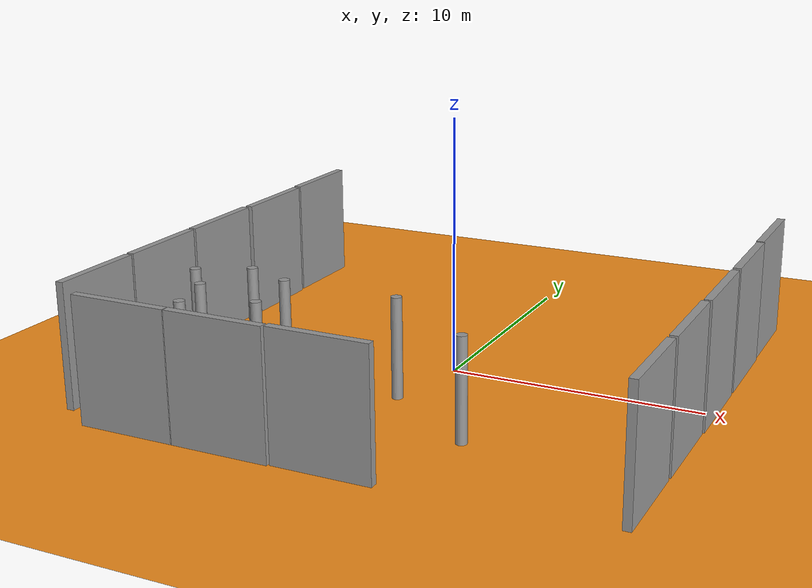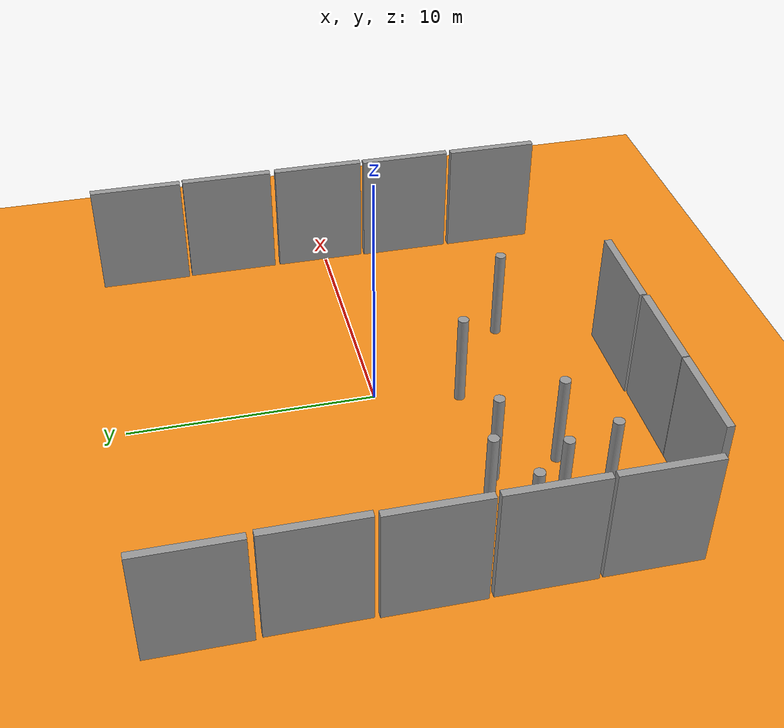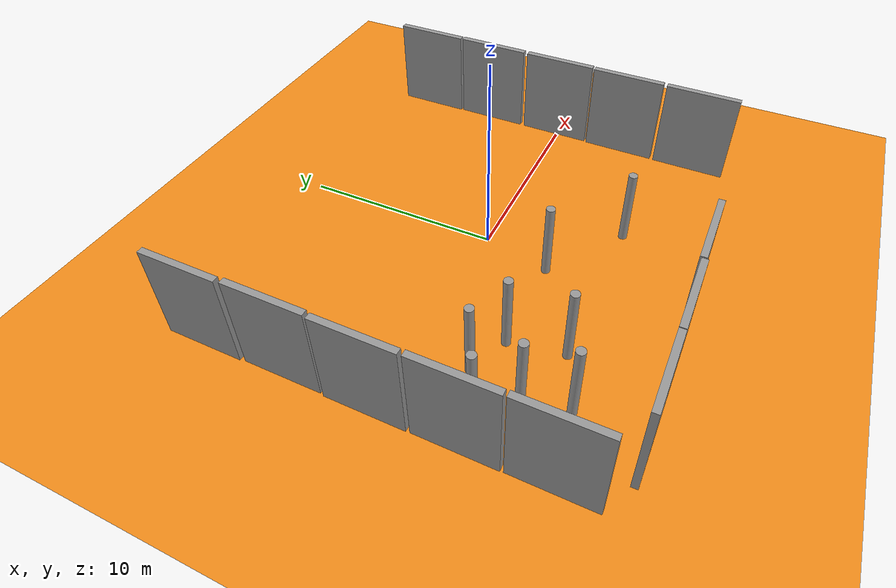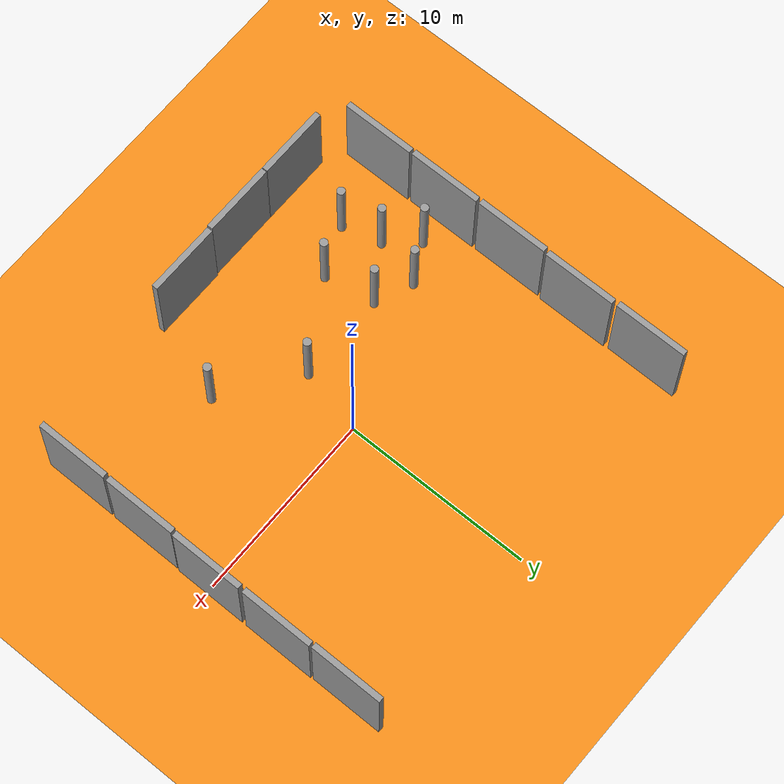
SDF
<sdf version="1.7">
 <world name="default">
  <model name="ground_plane">
   <static>1</static>
   <link name="link">
    <collision name="collision">
     <geometry><plane><normal>0 0 1</normal><size>100 100</size></plane></geometry>
     <surface>
      <contact><collide_bitmask>65535</collide_bitmask></contact>
      <friction><ode><mu>100</mu><mu2>50</mu2></ode></friction>
     </surface>
    </collision>
    <visual name="visual">
     <cast_shadows>0</cast_shadows>
     <geometry><plane><normal>0 0 1</normal><size>100 100</size></plane></geometry>
     <material>
      <script><uri>file://media/materials/scripts/gazebo.material</uri><name>Gazebo/Orange</name></script>
     </material>
    </visual>
   </link>
  </model>
  <model name="unit_cylinder_clone_clone_clone_clone_1">
   <pose>-7.51036 -2.53355 1.97903 -0 -0 -1.69984</pose>
   <link name="link">
    <inertial>
     <mass>1</mass>
     <inertia><ixx>0.145833</ixx><ixy>0</ixy><ixz>0</ixz><iyy>0.145833</iyy><iyz>0</iyz><izz>0.125</izz></inertia>
    </inertial>
    <collision name="collision">
     <geometry><cylinder><radius>0.213223</radius><length>3.95805</length></cylinder></geometry>
    </collision>
    <visual name="visual">
     <geometry><cylinder><radius>0.213223</radius><length>3.95805</length></cylinder></geometry>
     <material>
      <script><name>Gazebo/Grey</name><uri>file://media/materials/scripts/gazebo.material</uri></script>
     </material>
    </visual>
   </link>
  </model>
  <model name="unit_cylinder_clone_clone_clone_clone_5">
   <pose>-9.47016 -3.55077 1.97903 -0 -0 -1.70047</pose>
   <link name="link">
    <inertial>
     <mass>1</mass>
     <inertia><ixx>0.145833</ixx><ixy>0</ixy><ixz>0</ixz><iyy>0.145833</iyy><iyz>0</iyz><izz>0.125</izz></inertia>
    </inertial>
    <collision name="collision">
     <geometry><cylinder><radius>0.213223</radius><length>3.95805</length></cylinder></geometry>
    </collision>
    <visual name="visual">
     <geometry><cylinder><radius>0.213223</radius><length>3.95805</length></cylinder></geometry>
     <material>
      <script><name>Gazebo/Grey</name><uri>file://media/materials/scripts/gazebo.material</uri></script>
     </material>
    </visual>
   </link>
  </model>
  <model name="unit_cylinder_clone_clone_clone_clone_3_clone_0">
   <pose>-5.09151 -6.00811 1.97903 0 0 -1.71708</pose>
   <link name="link">
    <inertial>
     <mass>1</mass>
     <inertia><ixx>0.145833</ixx><ixy>0</ixy><ixz>0</ixz><iyy>0.145833</iyy><iyz>0</iyz><izz>0.125</izz></inertia>
    </inertial>
    <collision name="collision">
     <geometry><cylinder><radius>0.213223</radius><length>3.95805</length></cylinder></geometry>
    </collision>
    <visual name="visual">
     <geometry><cylinder><radius>0.213223</radius><length>3.95805</length></cylinder></geometry>
     <material>
      <script><name>Gazebo/Grey</name><uri>file://media/materials/scripts/gazebo.material</uri></script>
     </material>
    </visual>
   </link>
  </model>
  <model name="unit_cylinder_clone_clone_clone_clone_3_clone_1">
   <pose>3.08706 -6.06731 1.97901 0 0 -1.71274</pose>
   <link name="link">
    <inertial>
     <mass>1</mass>
     <inertia><ixx>0.145833</ixx><ixy>0</ixy><ixz>0</ixz><iyy>0.145833</iyy><iyz>0</iyz><izz>0.125</izz></inertia>
    </inertial>
    <collision name="collision">
     <geometry><cylinder><radius>0.213223</radius><length>3.95805</length></cylinder></geometry>
    </collision>
    <visual name="visual">
     <geometry><cylinder><radius>0.213223</radius><length>3.95805</length></cylinder></geometry>
     <material>
      <script><name>Gazebo/Grey</name><uri>file://media/materials/scripts/gazebo.material</uri></script>
     </material>
    </visual>
   </link>
  </model>
  <model name="unit_cylinder_clone_clone_clone_clone_3_clone_4">
   <pose>-7.63846 -7.10085 1.97901 -0 -0 -1.70854</pose>
   <link name="link">
    <inertial>
     <mass>1</mass>
     <inertia><ixx>0.145833</ixx><ixy>0</ixy><ixz>0</ixz><iyy>0.145833</iyy><iyz>0</iyz><izz>0.125</izz></inertia>
    </inertial>
    <collision name="collision">
     <geometry><cylinder><radius>0.213223</radius><length>3.95805</length></cylinder></geometry>
    </collision>
    <visual name="visual">
     <geometry><cylinder><radius>0.213223</radius><length>3.95805</length></cylinder></geometry>
     <material>
      <script><name>Gazebo/Grey</name><uri>file://media/materials/scripts/gazebo.material</uri></script>
     </material>
    </visual>
   </link>
  </model>
  <model name="unit_cylinder_clone_clone_clone_clone_3_clone_7">
   <pose>-5.55137 -3.34719 1.97901 -0 -0 -1.71443</pose>
   <link name="link">
    <inertial>
     <mass>1</mass>
     <inertia><ixx>0.145833</ixx><ixy>0</ixy><ixz>0</ixz><iyy>0.145833</iyy><iyz>0</iyz><izz>0.125</izz></inertia>
    </inertial>
    <collision name="collision">
     <geometry><cylinder><radius>0.213223</radius><length>3.95805</length></cylinder></geometry>
    </collision>
    <visual name="visual">
     <geometry><cylinder><radius>0.213223</radius><length>3.95805</length></cylinder></geometry>
     <material>
      <script><name>Gazebo/Grey</name><uri>file://media/materials/scripts/gazebo.material</uri></script>
     </material>
    </visual>
   </link>
  </model>
  <model name="Wall1_clone_clone_0_clone_1">
   <link name="link_1">
    <inertial>
     <mass>5.76087</mass>
     <inertia><ixx>18.5128</ixx><ixy>0</ixy><ixz>0</ixz><iyy>11.4896</iyy><iyz>0</iyz><izz>7.11389</izz></inertia>
    </inertial>
    <pose>-0.387698 -7.91676 -1e-06 0 -0 1.56704</pose>
    <visual name="visual">
     <geometry><box><size>0.30743 3.83717 4.88248</size></box></geometry>
     <material>
      <lighting>1</lighting>
      <script><uri>file://media/materials/scripts/gazebo.material</uri><name>Gazebo/Grey</name></script>
      <shader type="pixel"/>
     </material>
    </visual>
    <collision name="collision">
     <geometry><box><size>0.30743 3.83717 4.88248</size></box></geometry>
     <surface>
      <friction>
       <ode><mu>1</mu><mu2>1</mu2><fdir1>0 0 0</fdir1><slip1>0</slip1><slip2>0</slip2></ode>
       <torsional>
        <coefficient>1</coefficient>
        <patch_radius>0</patch_radius>
        <surface_radius>0</surface_radius>
        <use_patch_radius>1</use_patch_radius>
        <ode><slip>0</slip></ode>
       </torsional>
      </friction>
      <bounce><restitution_coefficient>0</restitution_coefficient><threshold>1e+06</threshold></bounce>
      <contact>
       <collide_without_contact>0</collide_without_contact>
       <collide_without_contact_bitmask>1</collide_without_contact_bitmask>
       <collide_bitmask>1</collide_bitmask>
       <ode>
        <soft_cfm>0</soft_cfm>
        <soft_erp>0.2</soft_erp>
        <kp>1e+13</kp>
        <kd>1</kd>
        <max_vel>0.01</max_vel>
        <min_depth>0</min_depth>
       </ode>
       <bullet>
        <split_impulse>1</split_impulse>
        <split_impulse_penetration_threshold>-0.01</split_impulse_penetration_threshold>
        <soft_cfm>0</soft_cfm>
        <soft_erp>0.2</soft_erp>
        <kp>1e+13</kp>
        <kd>1</kd>
       </bullet>
      </contact>
     </surface>
    </collision>
   </link>
   <static>1</static>
   <pose>0.379357 -2.27494 2.43363 0 -0 0</pose>
  </model>
  <model name="Wall1_clone_clone_0_clone_2">
   <link name="link_1">
    <inertial>
     <mass>5.76087</mass>
     <inertia><ixx>18.5128</ixx><ixy>0</ixy><ixz>0</ixz><iyy>11.4896</iyy><iyz>0</iyz><izz>7.11389</izz></inertia>
    </inertial>
    <pose>-0.387698 -7.91676 -1e-06 0 -0 1.56704</pose>
    <visual name="visual">
     <geometry><box><size>0.30743 3.83717 4.88248</size></box></geometry>
     <material>
      <lighting>1</lighting>
      <script><uri>file://media/materials/scripts/gazebo.material</uri><name>Gazebo/Grey</name></script>
      <shader type="pixel"/>
     </material>
    </visual>
    <collision name="collision">
     <geometry><box><size>0.30743 3.83717 4.88248</size></box></geometry>
     <surface>
      <friction>
       <ode><mu>1</mu><mu2>1</mu2><fdir1>0 0 0</fdir1><slip1>0</slip1><slip2>0</slip2></ode>
       <torsional>
        <coefficient>1</coefficient>
        <patch_radius>0</patch_radius>
        <surface_radius>0</surface_radius>
        <use_patch_radius>1</use_patch_radius>
        <ode><slip>0</slip></ode>
       </torsional>
      </friction>
      <bounce><restitution_coefficient>0</restitution_coefficient><threshold>1e+06</threshold></bounce>
      <contact>
       <collide_without_contact>0</collide_without_contact>
       <collide_without_contact_bitmask>1</collide_without_contact_bitmask>
       <collide_bitmask>1</collide_bitmask>
       <ode>
        <soft_cfm>0</soft_cfm>
        <soft_erp>0.2</soft_erp>
        <kp>1e+13</kp>
        <kd>1</kd>
        <max_vel>0.01</max_vel>
        <min_depth>0</min_depth>
       </ode>
       <bullet>
        <split_impulse>1</split_impulse>
        <split_impulse_penetration_threshold>-0.01</split_impulse_penetration_threshold>
        <soft_cfm>0</soft_cfm>
        <soft_erp>0.2</soft_erp>
        <kp>1e+13</kp>
        <kd>1</kd>
       </bullet>
      </contact>
     </surface>
    </collision>
   </link>
   <static>1</static>
   <pose>-3.52558 -2.33274 2.43363 0 -0 0</pose>
  </model>
  <model name="Wall1_clone_clone_0_clone_3">
   <link name="link_1">
    <inertial>
     <mass>5.76087</mass>
     <inertia><ixx>18.5128</ixx><ixy>0</ixy><ixz>0</ixz><iyy>11.4896</iyy><iyz>0</iyz><izz>7.11389</izz></inertia>
    </inertial>
    <pose>-0.387698 -7.91676 -1e-06 0 -0 1.56704</pose>
    <visual name="visual">
     <geometry><box><size>0.30743 3.83717 4.88248</size></box></geometry>
     <material>
      <lighting>1</lighting>
      <script><uri>file://media/materials/scripts/gazebo.material</uri><name>Gazebo/Grey</name></script>
      <shader type="pixel"/>
     </material>
    </visual>
    <collision name="collision">
     <geometry><box><size>0.30743 3.83717 4.88248</size></box></geometry>
     <surface>
      <friction>
       <ode><mu>1</mu><mu2>1</mu2><fdir1>0 0 0</fdir1><slip1>0</slip1><slip2>0</slip2></ode>
       <torsional>
        <coefficient>1</coefficient>
        <patch_radius>0</patch_radius>
        <surface_radius>0</surface_radius>
        <use_patch_radius>1</use_patch_radius>
        <ode><slip>0</slip></ode>
       </torsional>
      </friction>
      <bounce><restitution_coefficient>0</restitution_coefficient><threshold>1e+06</threshold></bounce>
      <contact>
       <collide_without_contact>0</collide_without_contact>
       <collide_without_contact_bitmask>1</collide_without_contact_bitmask>
       <collide_bitmask>1</collide_bitmask>
       <ode>
        <soft_cfm>0</soft_cfm>
        <soft_erp>0.2</soft_erp>
        <kp>1e+13</kp>
        <kd>1</kd>
        <max_vel>0.01</max_vel>
        <min_depth>0</min_depth>
       </ode>
       <bullet>
        <split_impulse>1</split_impulse>
        <split_impulse_penetration_threshold>-0.01</split_impulse_penetration_threshold>
        <soft_cfm>0</soft_cfm>
        <soft_erp>0.2</soft_erp>
        <kp>1e+13</kp>
        <kd>1</kd>
       </bullet>
      </contact>
     </surface>
    </collision>
   </link>
   <static>1</static>
   <pose>-7.40027 -2.31744 2.43363 0 -0 0</pose>
  </model>
  <model name="Wall2">
   <link name="link_1">
    <inertial>
     <mass>5.76087</mass>
     <inertia><ixx>18.5128</ixx><ixy>0</ixy><ixz>0</ixz><iyy>11.4896</iyy><iyz>0</iyz><izz>7.11389</izz></inertia>
    </inertial>
    <pose>-1.7674 21.3112 2.43363 0 -0 3.13835</pose>
    <visual name="visual">
     <geometry><box><size>0.30743 3.83717 4.88248</size></box></geometry>
     <material>
      <lighting>1</lighting>
      <script><uri>file://media/materials/scripts/gazebo.material</uri><name>Gazebo/Grey</name></script>
      <shader type="pixel"/>
     </material>
    </visual>
    <collision name="collision">
     <geometry><box><size>0.30743 3.83717 4.88248</size></box></geometry>
     <surface>
      <friction>
       <ode><mu>1</mu><mu2>1</mu2><fdir1>0 0 0</fdir1><slip1>0</slip1><slip2>0</slip2></ode>
       <torsional>
        <coefficient>1</coefficient>
        <patch_radius>0</patch_radius>
        <surface_radius>0</surface_radius>
        <use_patch_radius>1</use_patch_radius>
        <ode><slip>0</slip></ode>
       </torsional>
      </friction>
      <bounce><restitution_coefficient>0</restitution_coefficient><threshold>1e+06</threshold></bounce>
      <contact>
       <collide_without_contact>0</collide_without_contact>
       <collide_without_contact_bitmask>1</collide_without_contact_bitmask>
       <collide_bitmask>1</collide_bitmask>
       <ode>
        <soft_cfm>0</soft_cfm>
        <soft_erp>0.2</soft_erp>
        <kp>1e+13</kp>
        <kd>1</kd>
        <max_vel>0.01</max_vel>
        <min_depth>0</min_depth>
       </ode>
       <bullet>
        <split_impulse>1</split_impulse>
        <split_impulse_penetration_threshold>-0.01</split_impulse_penetration_threshold>
        <soft_cfm>0</soft_cfm>
        <soft_erp>0.2</soft_erp>
        <kp>1e+13</kp>
        <kd>1</kd>
       </bullet>
      </contact>
     </surface>
    </collision>
   </link>
   <static>1</static>
   <pose>12.0447 -17.0153 -0 0 -0 0</pose>
  </model>
  <model name="Wall2_clone">
   <link name="link_1">
    <inertial>
     <mass>5.76087</mass>
     <inertia><ixx>18.5128</ixx><ixy>0</ixy><ixz>0</ixz><iyy>11.4896</iyy><iyz>0</iyz><izz>7.11389</izz></inertia>
    </inertial>
    <pose>-1.7674 21.3112 2.43363 0 -0 3.13835</pose>
    <visual name="visual">
     <geometry><box><size>0.30743 3.83717 4.88248</size></box></geometry>
     <material>
      <lighting>1</lighting>
      <script><uri>file://media/materials/scripts/gazebo.material</uri><name>Gazebo/Grey</name></script>
      <shader type="pixel"/>
     </material>
    </visual>
    <collision name="collision">
     <geometry><box><size>0.30743 3.83717 4.88248</size></box></geometry>
     <surface>
      <friction>
       <ode><mu>1</mu><mu2>1</mu2><fdir1>0 0 0</fdir1><slip1>0</slip1><slip2>0</slip2></ode>
       <torsional>
        <coefficient>1</coefficient>
        <patch_radius>0</patch_radius>
        <surface_radius>0</surface_radius>
        <use_patch_radius>1</use_patch_radius>
        <ode><slip>0</slip></ode>
       </torsional>
      </friction>
      <bounce><restitution_coefficient>0</restitution_coefficient><threshold>1e+06</threshold></bounce>
      <contact>
       <collide_without_contact>0</collide_without_contact>
       <collide_without_contact_bitmask>1</collide_without_contact_bitmask>
       <collide_bitmask>1</collide_bitmask>
       <ode>
        <soft_cfm>0</soft_cfm>
        <soft_erp>0.2</soft_erp>
        <kp>1e+13</kp>
        <kd>1</kd>
        <max_vel>0.01</max_vel>
        <min_depth>0</min_depth>
       </ode>
       <bullet>
        <split_impulse>1</split_impulse>
        <split_impulse_penetration_threshold>-0.01</split_impulse_penetration_threshold>
        <soft_cfm>0</soft_cfm>
        <soft_erp>0.2</soft_erp>
        <kp>1e+13</kp>
        <kd>1</kd>
       </bullet>
      </contact>
     </surface>
    </collision>
   </link>
   <static>1</static>
   <pose>12.019 -13.0627 -0 0 -0 0</pose>
  </model>
  <model name="Wall2_clone_0">
   <link name="link_1">
    <inertial>
     <mass>5.76087</mass>
     <inertia><ixx>18.5128</ixx><ixy>0</ixy><ixz>0</ixz><iyy>11.4896</iyy><iyz>0</iyz><izz>7.11389</izz></inertia>
    </inertial>
    <pose>-1.7674 21.3112 2.43363 0 -0 3.13835</pose>
    <visual name="visual">
     <geometry><box><size>0.30743 3.83717 4.88248</size></box></geometry>
     <material>
      <lighting>1</lighting>
      <script><uri>file://media/materials/scripts/gazebo.material</uri><name>Gazebo/Grey</name></script>
      <shader type="pixel"/>
     </material>
    </visual>
    <collision name="collision">
     <geometry><box><size>0.30743 3.83717 4.88248</size></box></geometry>
     <surface>
      <friction>
       <ode><mu>1</mu><mu2>1</mu2><fdir1>0 0 0</fdir1><slip1>0</slip1><slip2>0</slip2></ode>
       <torsional>
        <coefficient>1</coefficient>
        <patch_radius>0</patch_radius>
        <surface_radius>0</surface_radius>
        <use_patch_radius>1</use_patch_radius>
        <ode><slip>0</slip></ode>
       </torsional>
      </friction>
      <bounce><restitution_coefficient>0</restitution_coefficient><threshold>1e+06</threshold></bounce>
      <contact>
       <collide_without_contact>0</collide_without_contact>
       <collide_without_contact_bitmask>1</collide_without_contact_bitmask>
       <collide_bitmask>1</collide_bitmask>
       <ode>
        <soft_cfm>0</soft_cfm>
        <soft_erp>0.2</soft_erp>
        <kp>1e+13</kp>
        <kd>1</kd>
        <max_vel>0.01</max_vel>
        <min_depth>0</min_depth>
       </ode>
       <bullet>
        <split_impulse>1</split_impulse>
        <split_impulse_penetration_threshold>-0.01</split_impulse_penetration_threshold>
        <soft_cfm>0</soft_cfm>
        <soft_erp>0.2</soft_erp>
        <kp>1e+13</kp>
        <kd>1</kd>
       </bullet>
      </contact>
     </surface>
    </collision>
   </link>
   <static>1</static>
   <pose>12.0301 -21.0766 -0 0 -0 0</pose>
  </model>
  <model name="Wall2_clone_1">
   <link name="link_1">
    <inertial>
     <mass>5.76087</mass>
     <inertia><ixx>18.5128</ixx><ixy>0</ixy><ixz>0</ixz><iyy>11.4896</iyy><iyz>0</iyz><izz>7.11389</izz></inertia>
    </inertial>
    <pose>-1.7674 21.3112 2.43363 0 -0 3.13835</pose>
    <visual name="visual">
     <geometry><box><size>0.30743 3.83717 4.88248</size></box></geometry>
     <material>
      <lighting>1</lighting>
      <script><uri>file://media/materials/scripts/gazebo.material</uri><name>Gazebo/Grey</name></script>
      <shader type="pixel"/>
     </material>
    </visual>
    <collision name="collision">
     <geometry><box><size>0.30743 3.83717 4.88248</size></box></geometry>
     <surface>
      <friction>
       <ode><mu>1</mu><mu2>1</mu2><fdir1>0 0 0</fdir1><slip1>0</slip1><slip2>0</slip2></ode>
       <torsional>
        <coefficient>1</coefficient>
        <patch_radius>0</patch_radius>
        <surface_radius>0</surface_radius>
        <use_patch_radius>1</use_patch_radius>
        <ode><slip>0</slip></ode>
       </torsional>
      </friction>
      <bounce><restitution_coefficient>0</restitution_coefficient><threshold>1e+06</threshold></bounce>
      <contact>
       <collide_without_contact>0</collide_without_contact>
       <collide_without_contact_bitmask>1</collide_without_contact_bitmask>
       <collide_bitmask>1</collide_bitmask>
       <ode>
        <soft_cfm>0</soft_cfm>
        <soft_erp>0.2</soft_erp>
        <kp>1e+13</kp>
        <kd>1</kd>
        <max_vel>0.01</max_vel>
        <min_depth>0</min_depth>
       </ode>
       <bullet>
        <split_impulse>1</split_impulse>
        <split_impulse_penetration_threshold>-0.01</split_impulse_penetration_threshold>
        <soft_cfm>0</soft_cfm>
        <soft_erp>0.2</soft_erp>
        <kp>1e+13</kp>
        <kd>1</kd>
       </bullet>
      </contact>
     </surface>
    </collision>
   </link>
   <static>1</static>
   <pose>11.9663 -25.036 -0 0 -0 0</pose>
  </model>
  <model name="Wall2_clone_2">
   <link name="link_1">
    <inertial>
     <mass>5.76087</mass>
     <inertia><ixx>18.5128</ixx><ixy>0</ixy><ixz>0</ixz><iyy>11.4896</iyy><iyz>0</iyz><izz>7.11389</izz></inertia>
    </inertial>
    <pose>-1.7674 21.3112 2.43363 0 -0 3.13835</pose>
    <visual name="visual">
     <geometry><box><size>0.30743 3.83717 4.88248</size></box></geometry>
     <material>
      <lighting>1</lighting>
      <script><uri>file://media/materials/scripts/gazebo.material</uri><name>Gazebo/Grey</name></script>
      <shader type="pixel"/>
     </material>
    </visual>
    <collision name="collision">
     <geometry><box><size>0.30743 3.83717 4.88248</size></box></geometry>
     <surface>
      <friction>
       <ode><mu>1</mu><mu2>1</mu2><fdir1>0 0 0</fdir1><slip1>0</slip1><slip2>0</slip2></ode>
       <torsional>
        <coefficient>1</coefficient>
        <patch_radius>0</patch_radius>
        <surface_radius>0</surface_radius>
        <use_patch_radius>1</use_patch_radius>
        <ode><slip>0</slip></ode>
       </torsional>
      </friction>
      <bounce><restitution_coefficient>0</restitution_coefficient><threshold>1e+06</threshold></bounce>
      <contact>
       <collide_without_contact>0</collide_without_contact>
       <collide_without_contact_bitmask>1</collide_without_contact_bitmask>
       <collide_bitmask>1</collide_bitmask>
       <ode>
        <soft_cfm>0</soft_cfm>
        <soft_erp>0.2</soft_erp>
        <kp>1e+13</kp>
        <kd>1</kd>
        <max_vel>0.01</max_vel>
        <min_depth>0</min_depth>
       </ode>
       <bullet>
        <split_impulse>1</split_impulse>
        <split_impulse_penetration_threshold>-0.01</split_impulse_penetration_threshold>
        <soft_cfm>0</soft_cfm>
        <soft_erp>0.2</soft_erp>
        <kp>1e+13</kp>
        <kd>1</kd>
       </bullet>
      </contact>
     </surface>
    </collision>
   </link>
   <static>1</static>
   <pose>11.9339 -29.0595 -0 0 -0 0</pose>
  </model>
  <model name="Wall2_clone_3">
   <link name="link_1">
    <inertial>
     <mass>5.76087</mass>
     <inertia><ixx>18.5128</ixx><ixy>0</ixy><ixz>0</ixz><iyy>11.4896</iyy><iyz>0</iyz><izz>7.11389</izz></inertia>
    </inertial>
    <pose>-1.7674 21.3112 2.43363 0 -0 3.13835</pose>
    <visual name="visual">
     <geometry><box><size>0.30743 3.83717 4.88248</size></box></geometry>
     <material>
      <lighting>1</lighting>
      <script><uri>file://media/materials/scripts/gazebo.material</uri><name>Gazebo/Grey</name></script>
      <shader type="pixel"/>
     </material>
    </visual>
    <collision name="collision">
     <geometry><box><size>0.30743 3.83717 4.88248</size></box></geometry>
     <surface>
      <friction>
       <ode><mu>1</mu><mu2>1</mu2><fdir1>0 0 0</fdir1><slip1>0</slip1><slip2>0</slip2></ode>
       <torsional>
        <coefficient>1</coefficient>
        <patch_radius>0</patch_radius>
        <surface_radius>0</surface_radius>
        <use_patch_radius>1</use_patch_radius>
        <ode><slip>0</slip></ode>
       </torsional>
      </friction>
      <bounce><restitution_coefficient>0</restitution_coefficient><threshold>1e+06</threshold></bounce>
      <contact>
       <collide_without_contact>0</collide_without_contact>
       <collide_without_contact_bitmask>1</collide_without_contact_bitmask>
       <collide_bitmask>1</collide_bitmask>
       <ode>
        <soft_cfm>0</soft_cfm>
        <soft_erp>0.2</soft_erp>
        <kp>1e+13</kp>
        <kd>1</kd>
        <max_vel>0.01</max_vel>
        <min_depth>0</min_depth>
       </ode>
       <bullet>
        <split_impulse>1</split_impulse>
        <split_impulse_penetration_threshold>-0.01</split_impulse_penetration_threshold>
        <soft_cfm>0</soft_cfm>
        <soft_erp>0.2</soft_erp>
        <kp>1e+13</kp>
        <kd>1</kd>
       </bullet>
      </contact>
     </surface>
    </collision>
   </link>
   <static>1</static>
   <pose>-9.2279 -12.8106 -0 0 -0 0</pose>
  </model>
  <model name="Wall2_clone_4">
   <link name="link_1">
    <inertial>
     <mass>5.76087</mass>
     <inertia><ixx>18.5128</ixx><ixy>0</ixy><ixz>0</ixz><iyy>11.4896</iyy><iyz>0</iyz><izz>7.11389</izz></inertia>
    </inertial>
    <pose>-1.7674 21.3112 2.43363 0 -0 3.13835</pose>
    <visual name="visual">
     <geometry><box><size>0.30743 3.83717 4.88248</size></box></geometry>
     <material>
      <lighting>1</lighting>
      <script><uri>file://media/materials/scripts/gazebo.material</uri><name>Gazebo/Grey</name></script>
      <shader type="pixel"/>
     </material>
    </visual>
    <collision name="collision">
     <geometry><box><size>0.30743 3.83717 4.88248</size></box></geometry>
     <surface>
      <friction>
       <ode><mu>1</mu><mu2>1</mu2><fdir1>0 0 0</fdir1><slip1>0</slip1><slip2>0</slip2></ode>
       <torsional>
        <coefficient>1</coefficient>
        <patch_radius>0</patch_radius>
        <surface_radius>0</surface_radius>
        <use_patch_radius>1</use_patch_radius>
        <ode><slip>0</slip></ode>
       </torsional>
      </friction>
      <bounce><restitution_coefficient>0</restitution_coefficient><threshold>1e+06</threshold></bounce>
      <contact>
       <collide_without_contact>0</collide_without_contact>
       <collide_without_contact_bitmask>1</collide_without_contact_bitmask>
       <collide_bitmask>1</collide_bitmask>
       <ode>
        <soft_cfm>0</soft_cfm>
        <soft_erp>0.2</soft_erp>
        <kp>1e+13</kp>
        <kd>1</kd>
        <max_vel>0.01</max_vel>
        <min_depth>0</min_depth>
       </ode>
       <bullet>
        <split_impulse>1</split_impulse>
        <split_impulse_penetration_threshold>-0.01</split_impulse_penetration_threshold>
        <soft_cfm>0</soft_cfm>
        <soft_erp>0.2</soft_erp>
        <kp>1e+13</kp>
        <kd>1</kd>
       </bullet>
      </contact>
     </surface>
    </collision>
   </link>
   <static>1</static>
   <pose>-9.1794 -16.8753 -0 0 -0 0</pose>
  </model>
  <model name="Wall2_clone_5">
   <link name="link_1">
    <inertial>
     <mass>5.76087</mass>
     <inertia><ixx>18.5128</ixx><ixy>0</ixy><ixz>0</ixz><iyy>11.4896</iyy><iyz>0</iyz><izz>7.11389</izz></inertia>
    </inertial>
    <pose>-1.7674 21.3112 2.43363 0 -0 3.13835</pose>
    <visual name="visual">
     <geometry><box><size>0.30743 3.83717 4.88248</size></box></geometry>
     <material>
      <lighting>1</lighting>
      <script><uri>file://media/materials/scripts/gazebo.material</uri><name>Gazebo/Grey</name></script>
      <shader type="pixel"/>
     </material>
    </visual>
    <collision name="collision">
     <geometry><box><size>0.30743 3.83717 4.88248</size></box></geometry>
     <surface>
      <friction>
       <ode><mu>1</mu><mu2>1</mu2><fdir1>0 0 0</fdir1><slip1>0</slip1><slip2>0</slip2></ode>
       <torsional>
        <coefficient>1</coefficient>
        <patch_radius>0</patch_radius>
        <surface_radius>0</surface_radius>
        <use_patch_radius>1</use_patch_radius>
        <ode><slip>0</slip></ode>
       </torsional>
      </friction>
      <bounce><restitution_coefficient>0</restitution_coefficient><threshold>1e+06</threshold></bounce>
      <contact>
       <collide_without_contact>0</collide_without_contact>
       <collide_without_contact_bitmask>1</collide_without_contact_bitmask>
       <collide_bitmask>1</collide_bitmask>
       <ode>
        <soft_cfm>0</soft_cfm>
        <soft_erp>0.2</soft_erp>
        <kp>1e+13</kp>
        <kd>1</kd>
        <max_vel>0.01</max_vel>
        <min_depth>0</min_depth>
       </ode>
       <bullet>
        <split_impulse>1</split_impulse>
        <split_impulse_penetration_threshold>-0.01</split_impulse_penetration_threshold>
        <soft_cfm>0</soft_cfm>
        <soft_erp>0.2</soft_erp>
        <kp>1e+13</kp>
        <kd>1</kd>
       </bullet>
      </contact>
     </surface>
    </collision>
   </link>
   <static>1</static>
   <pose>-9.2516 -20.8839 -0 0 -0 0</pose>
  </model>
  <model name="Wall2_clone_6">
   <link name="link_1">
    <inertial>
     <mass>5.76087</mass>
     <inertia><ixx>18.5128</ixx><ixy>0</ixy><ixz>0</ixz><iyy>11.4896</iyy><iyz>0</iyz><izz>7.11389</izz></inertia>
    </inertial>
    <pose>-1.7674 21.3112 2.43363 0 -0 3.13835</pose>
    <visual name="visual">
     <geometry><box><size>0.30743 3.83717 4.88248</size></box></geometry>
     <material>
      <lighting>1</lighting>
      <script><uri>file://media/materials/scripts/gazebo.material</uri><name>Gazebo/Grey</name></script>
      <shader type="pixel"/>
     </material>
    </visual>
    <collision name="collision">
     <geometry><box><size>0.30743 3.83717 4.88248</size></box></geometry>
     <surface>
      <friction>
       <ode><mu>1</mu><mu2>1</mu2><fdir1>0 0 0</fdir1><slip1>0</slip1><slip2>0</slip2></ode>
       <torsional>
        <coefficient>1</coefficient>
        <patch_radius>0</patch_radius>
        <surface_radius>0</surface_radius>
        <use_patch_radius>1</use_patch_radius>
        <ode><slip>0</slip></ode>
       </torsional>
      </friction>
      <bounce><restitution_coefficient>0</restitution_coefficient><threshold>1e+06</threshold></bounce>
      <contact>
       <collide_without_contact>0</collide_without_contact>
       <collide_without_contact_bitmask>1</collide_without_contact_bitmask>
       <collide_bitmask>1</collide_bitmask>
       <ode>
        <soft_cfm>0</soft_cfm>
        <soft_erp>0.2</soft_erp>
        <kp>1e+13</kp>
        <kd>1</kd>
        <max_vel>0.01</max_vel>
        <min_depth>0</min_depth>
       </ode>
       <bullet>
        <split_impulse>1</split_impulse>
        <split_impulse_penetration_threshold>-0.01</split_impulse_penetration_threshold>
        <soft_cfm>0</soft_cfm>
        <soft_erp>0.2</soft_erp>
        <kp>1e+13</kp>
        <kd>1</kd>
       </bullet>
      </contact>
     </surface>
    </collision>
   </link>
   <static>1</static>
   <pose>-9.2422 -24.8839 -0 0 -0 0</pose>
  </model>
  <model name="Wall2_clone_7">
   <link name="link_1">
    <inertial>
     <mass>5.76087</mass>
     <inertia><ixx>18.5128</ixx><ixy>0</ixy><ixz>0</ixz><iyy>11.4896</iyy><iyz>0</iyz><izz>7.11389</izz></inertia>
    </inertial>
    <pose>-1.7674 21.3112 2.43363 0 -0 3.13835</pose>
    <visual name="visual">
     <geometry><box><size>0.30743 3.83717 4.88248</size></box></geometry>
     <material>
      <lighting>1</lighting>
      <script><uri>file://media/materials/scripts/gazebo.material</uri><name>Gazebo/Grey</name></script>
      <shader type="pixel"/>
     </material>
    </visual>
    <collision name="collision">
     <geometry><box><size>0.30743 3.83717 4.88248</size></box></geometry>
     <surface>
      <friction>
       <ode><mu>1</mu><mu2>1</mu2><fdir1>0 0 0</fdir1><slip1>0</slip1><slip2>0</slip2></ode>
       <torsional>
        <coefficient>1</coefficient>
        <patch_radius>0</patch_radius>
        <surface_radius>0</surface_radius>
        <use_patch_radius>1</use_patch_radius>
        <ode><slip>0</slip></ode>
       </torsional>
      </friction>
      <bounce><restitution_coefficient>0</restitution_coefficient><threshold>1e+06</threshold></bounce>
      <contact>
       <collide_without_contact>0</collide_without_contact>
       <collide_without_contact_bitmask>1</collide_without_contact_bitmask>
       <collide_bitmask>1</collide_bitmask>
       <ode>
        <soft_cfm>0</soft_cfm>
        <soft_erp>0.2</soft_erp>
        <kp>1e+13</kp>
        <kd>1</kd>
        <max_vel>0.01</max_vel>
        <min_depth>0</min_depth>
       </ode>
       <bullet>
        <split_impulse>1</split_impulse>
        <split_impulse_penetration_threshold>-0.01</split_impulse_penetration_threshold>
        <soft_cfm>0</soft_cfm>
        <soft_erp>0.2</soft_erp>
        <kp>1e+13</kp>
        <kd>1</kd>
       </bullet>
      </contact>
     </surface>
    </collision>
   </link>
   <static>1</static>
   <pose>-9.232 -28.8503 -0 0 -0 0</pose>
  </model>
  <model name="unit_cylinder_clone_clone_clone_clone_3_clone_2_clone_0">
   <pose>-0.764646 -3.37204 1.97901 -0 -0 -1.70559</pose>
   <link name="link">
    <inertial>
     <mass>1</mass>
     <inertia><ixx>0.145833</ixx><ixy>0</ixy><ixz>0</ixz><iyy>0.145833</iyy><iyz>0</iyz><izz>0.125</izz></inertia>
    </inertial>
    <collision name="collision">
     <geometry><cylinder><radius>0.213223</radius><length>3.95805</length></cylinder></geometry>
    </collision>
    <visual name="visual">
     <geometry><cylinder><radius>0.213223</radius><length>3.95805</length></cylinder></geometry>
     <material>
      <script><name>Gazebo/Grey</name><uri>file://media/materials/scripts/gazebo.material</uri></script>
     </material>
    </visual>
   </link>
  </model>
  <model name="unit_cylinder_clone_clone_clone_clone_3_clone_2_clone_4">
   <pose>-8.18234 -5.06773 1.97903 0 0 -1.70571</pose>
   <link name="link">
    <inertial>
     <mass>1</mass>
     <inertia><ixx>0.145833</ixx><ixy>0</ixy><ixz>0</ixz><iyy>0.145833</iyy><iyz>0</iyz><izz>0.125</izz></inertia>
    </inertial>
    <collision name="collision">
     <geometry><cylinder><radius>0.213223</radius><length>3.95805</length></cylinder></geometry>
    </collision>
    <visual name="visual">
     <geometry><cylinder><radius>0.213223</radius><length>3.95805</length></cylinder></geometry>
     <material>
      <script><name>Gazebo/Grey</name><uri>file://media/materials/scripts/gazebo.material</uri></script>
     </material>
    </visual>
   </link>
  </model>
 </world>
</sdf>
